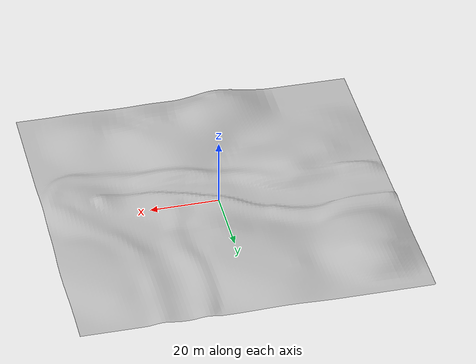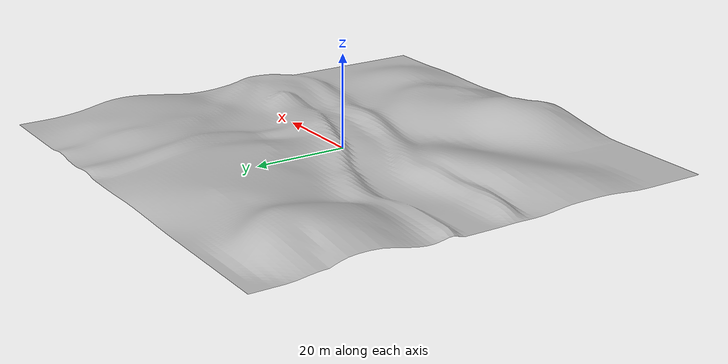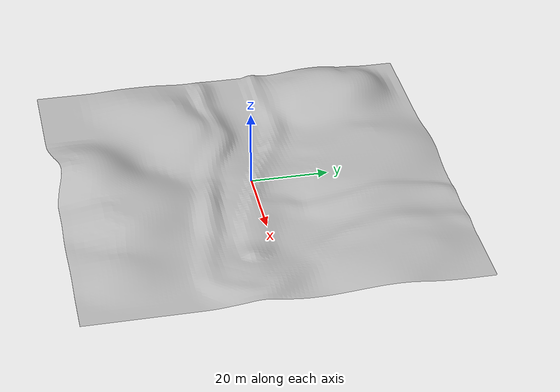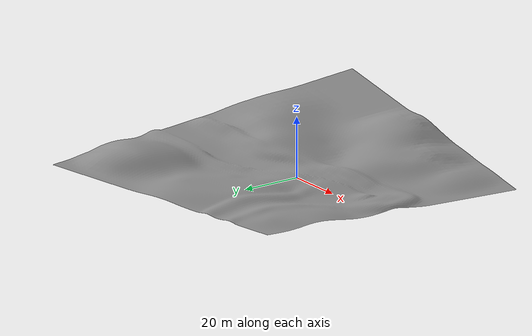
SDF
<?xml version="1.0" ?>
<sdf version="1.9">
  <model name="my_park">
    <static>true</static>
    <link name="link">
      <visual name="visual">
        <pose>0 0 0 1.5708 0 3.1415</pose>
        <geometry>
          <mesh>
            <uri>model://my_park/mesh.obj</uri>
          </mesh>
        </geometry>
      </visual>
      <collision name="collision">
        <pose>0 0 0 1.5708 0 3.1415</pose>
        <geometry>
          <mesh>
            <uri>model://my_park/mesh.obj</uri>
          </mesh>
        </geometry>
      </collision>
    </link>
  </model>
</sdf>
